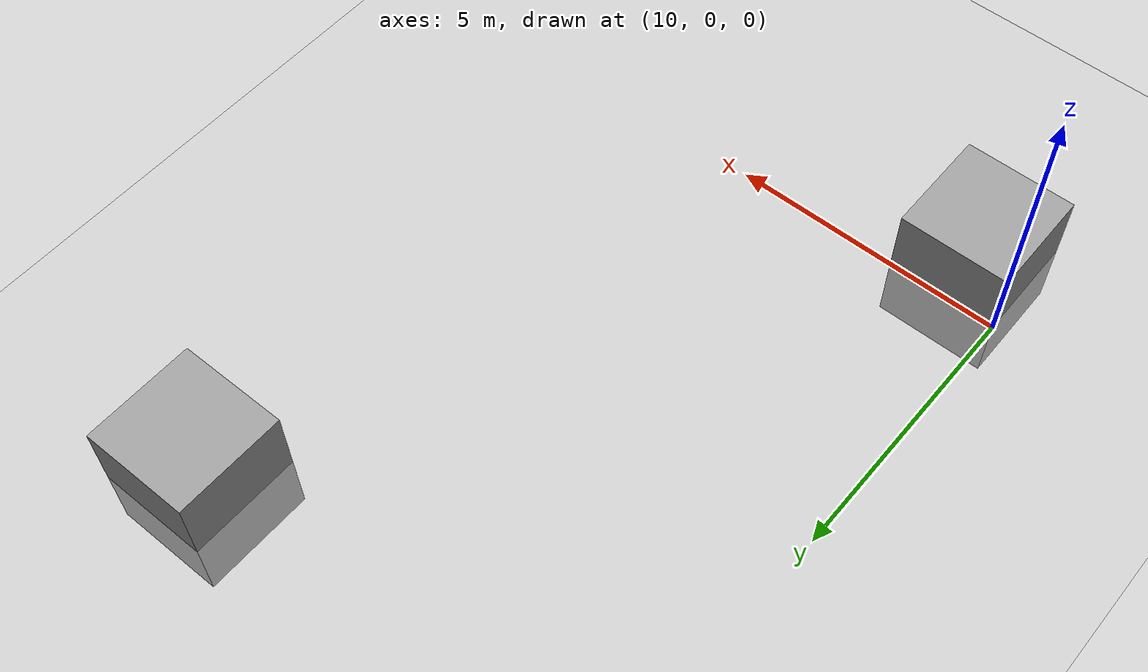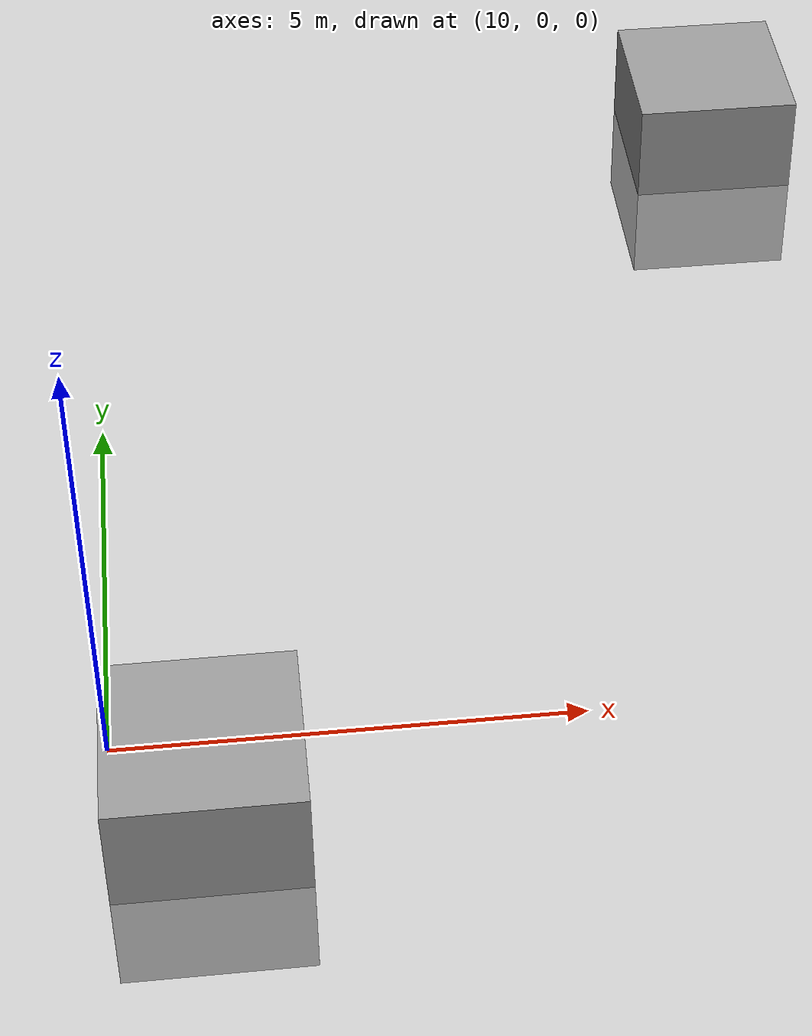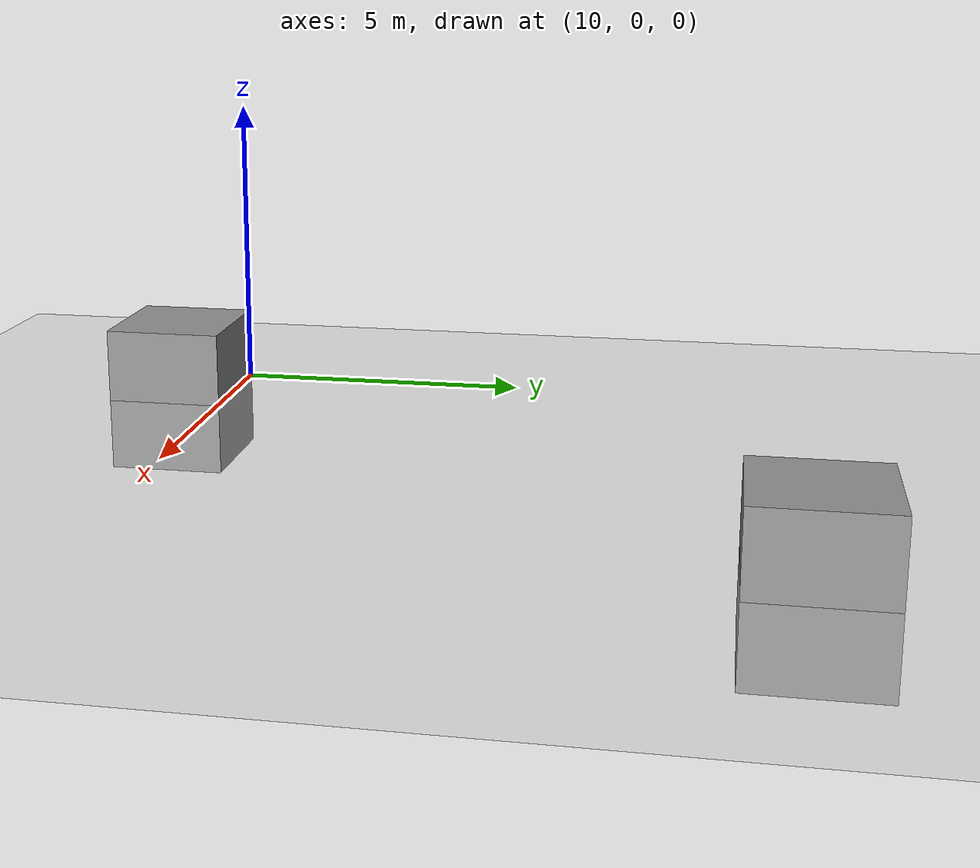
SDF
<?xml version="1.0" ?>
<sdf version="1.4">
  <!-- We use a custom world for the spido so that the camera angle is launched correctly -->

  <world name="default">

    <physics type='ode'>
      <max_step_size>0.001</max_step_size>
      <real_time_factor>1</real_time_factor>
      <real_time_update_rate>1e+03</real_time_update_rate>
    </physics>

    <!-- Global light source -->
    <include>
      <uri>model://sun</uri>
    </include>

    <!-- hide grid -->

    <!-- Focus camera on tall pendulum -->
    <gui fullscreen='0'>
      <camera name='user_camera'>
        <pose>4.927360 -4.376610 3.740080 0.000000 0.275643 2.356190</pose>
        <view_controller>orbit</view_controller>
      </camera>
    </gui>

    <!-- Custom groud plane -->
    <model name="ground_plane">
      <static>true</static>
      <link name="link">
        <collision name="collision">
          <geometry>
            <plane>
              <normal>0 0 1</normal>
              <size>75 130</size>
            </plane>
          </geometry>
          <pose>-27.5 55 0 0 0 0</pose>
          <surface>
            <friction>
              <ode>
                <mu>100</mu>
                <mu2>50</mu2>
              </ode>
            </friction>
          </surface>
        </collision>
        <visual name="visual">
          <cast_shadows>false</cast_shadows>
          <pose>-27.5 55 0 0 0 0</pose>
          <geometry>
            <plane>
              <normal>0 0 1</normal>
              <size>75 130</size>
            </plane>
          </geometry>
          <material>
            <script>
              <uri>file://media/materials/scripts/gazebo.material</uri>
              <name>Gazebo/Grey</name>
            </script>
          </material>
        </visual>
      </link>
    </model>

    <!-- obstacle -->
    <model name='obstacle'>
      <link name='Wall_1'>
        <collision name='Wall_1_Collision'>
          <geometry>
            <box>
              <size>2 2 2.5</size>
            </box>
          </geometry>
          <pose>11 -1 0 0 -0 0</pose>
        </collision>
        <visual name='Wall_1_Visual'>
          <pose>11 -1 0 0 -0 0</pose>
          <geometry>
            <box>
              <size>2 2 2.5</size>
            </box>
          </geometry>
          <material>
            <script>
              <uri>file://media/materials/scripts/gazebo.material</uri>
              <name>Gazebo/Grey</name>
            </script>
          </material>
        </visual>
        <velocity_decay>
          <linear>0</linear>
          <angular>0</angular>
        </velocity_decay>
        <pose>0 0 0 0 -0 0</pose>
      </link>
      <static>1</static>

      <link name='Wall_2'>
        <collision name='Wall_2_Collision'>
          <geometry>
            <box>
              <size>2 2 2.5</size>
            </box>
          </geometry>
          <pose>18 10 0 0 -0 0</pose>
        </collision>
        <visual name='Wall_2_Visual'>
          <pose>18 10 0 0 -0 0</pose>
          <geometry>
            <box>
              <size>2 2 2.5</size>
            </box>
          </geometry>
          <material>
            <script>
              <uri>file://media/materials/scripts/gazebo.material</uri>
              <name>Gazebo/Grey</name>
            </script>
          </material>
        </visual>
        <velocity_decay>
          <linear>0</linear>
          <angular>0</angular>
        </velocity_decay>
        <pose>0 0 0 0 -0 0</pose>
      </link>
      <static>1</static>
    </model>

  </world>
</sdf>
